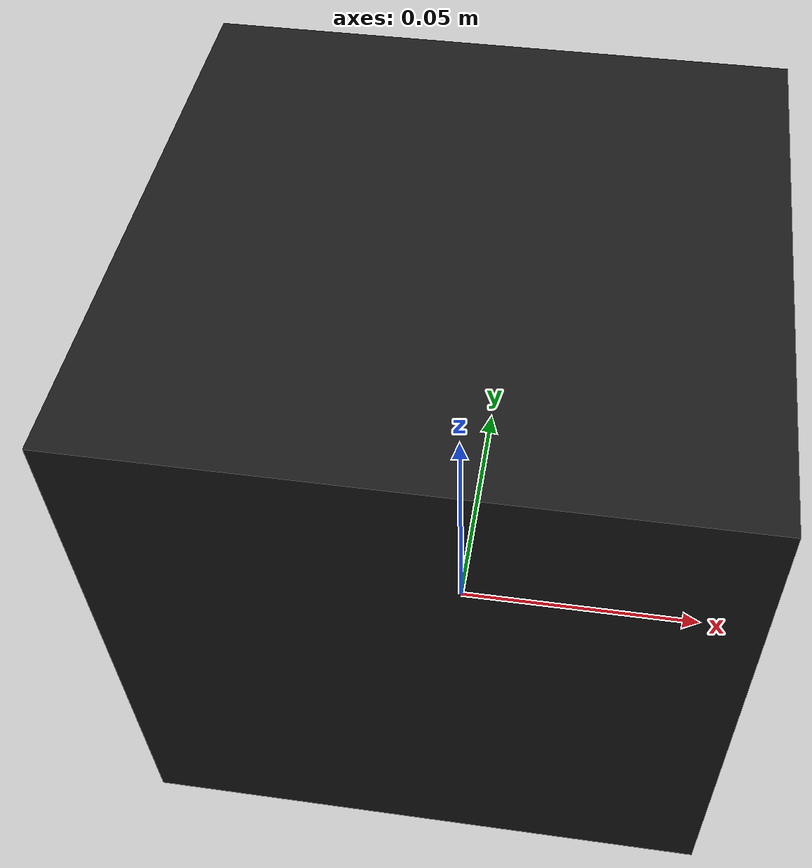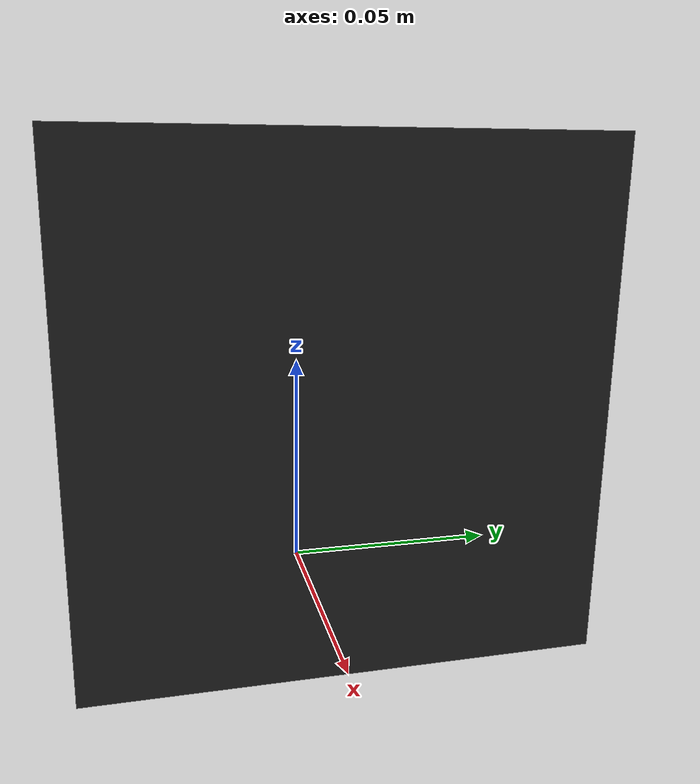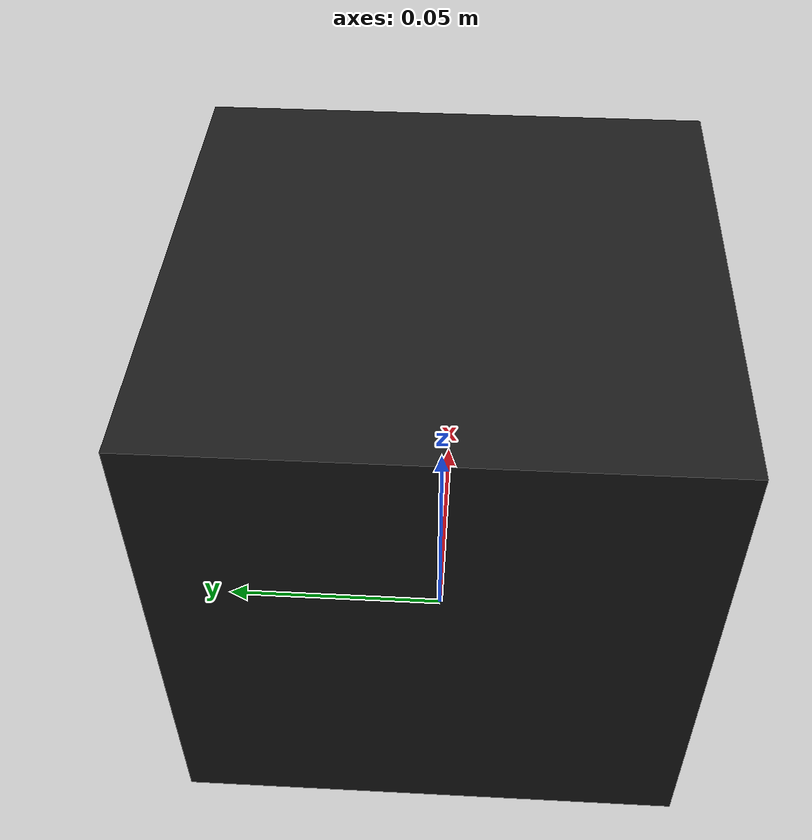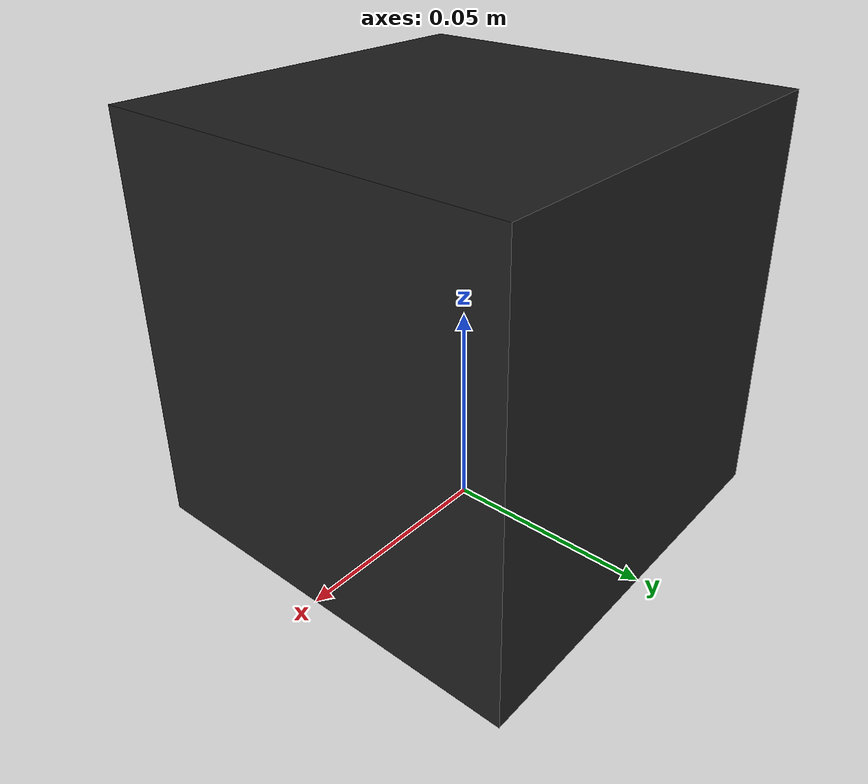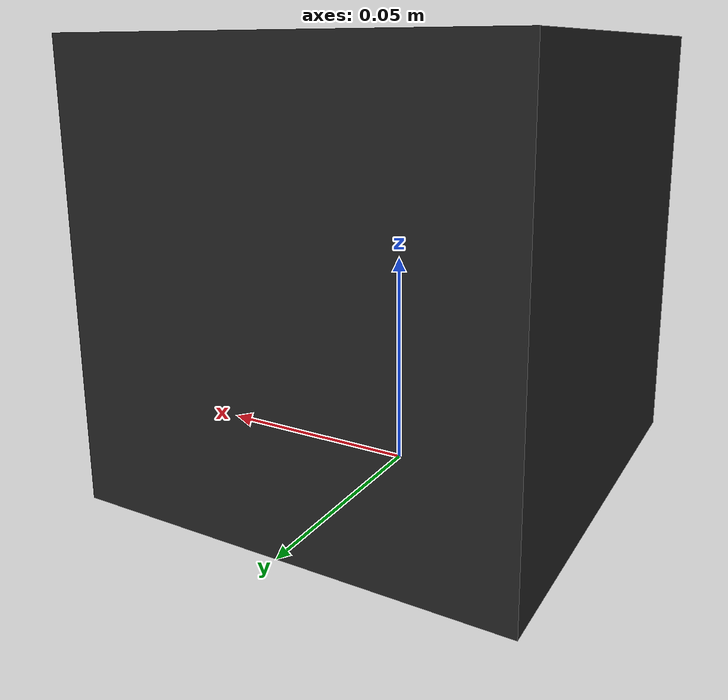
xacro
<?xml version="1.0" ?>
<robot name="push_robot" xmlns:xacro="http://ros.org/wiki/xacro">
  <xacro:include filename="$(find ssabot)/urdf/common_properties.xacro"/>

  <link name="base_footprint"/>

  <joint name="base_joint1" type="fixed">
    <parent link="base_footprint"/>
    <child link="base_link1" />
    <origin xyz="0 0 0" rpy="0 0 0"/>
  </joint>

  <link name="base_link1">
    <visual>
      <origin xyz="0 0 0.05" rpy="0 0 0"/>
      <geometry>
        <box size="0.1 0.1 0.1"/>
      </geometry>
      <material name="light_black"/>
    </visual>

    <collision>
      <origin xyz="0 0 0.05" rpy="0 0 0"/>
      <geometry>
        <box size="0.1 0.1 0.1"/>
      </geometry>
    </collision>
  </link>

</robot>
